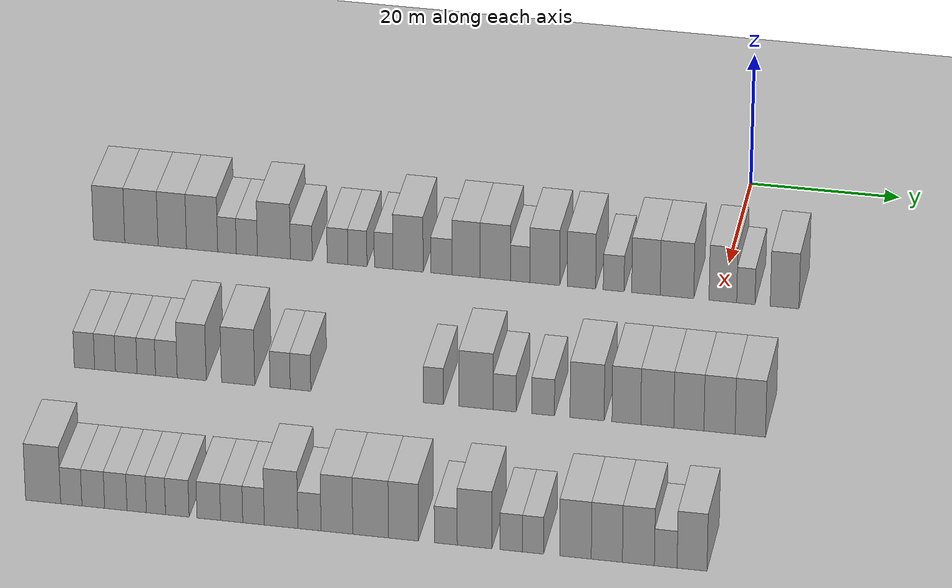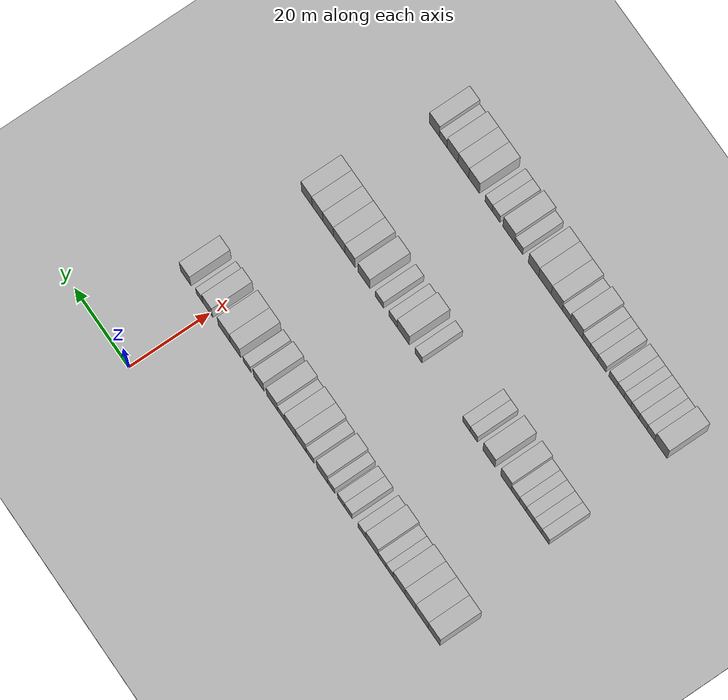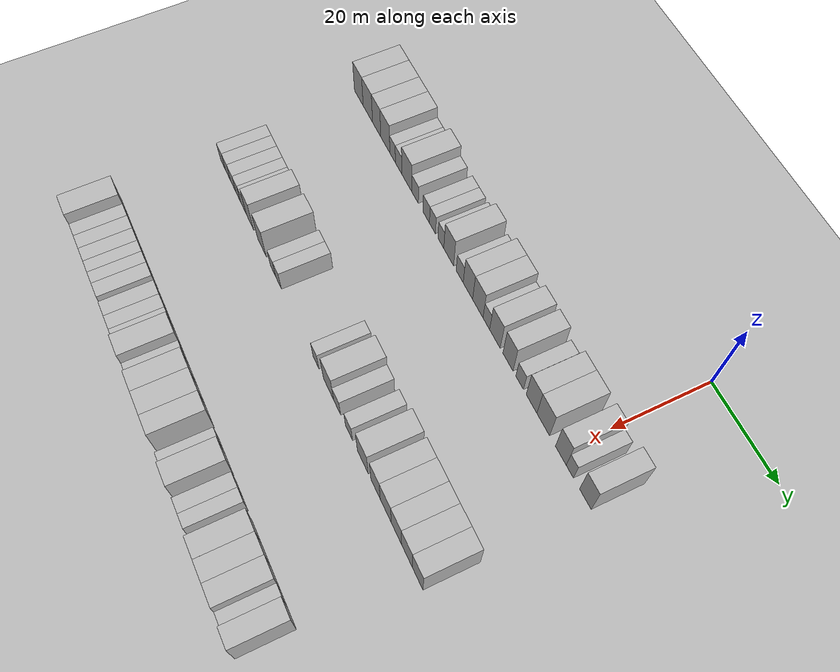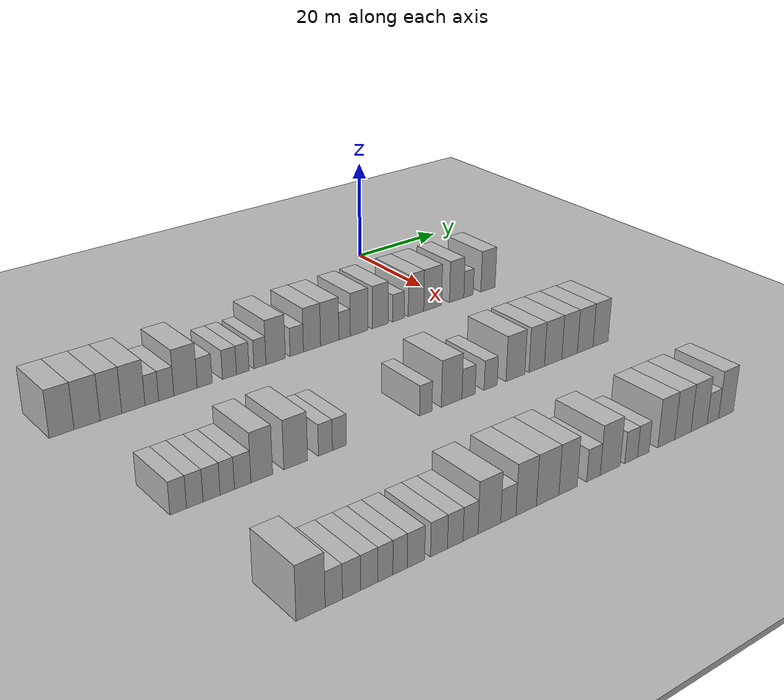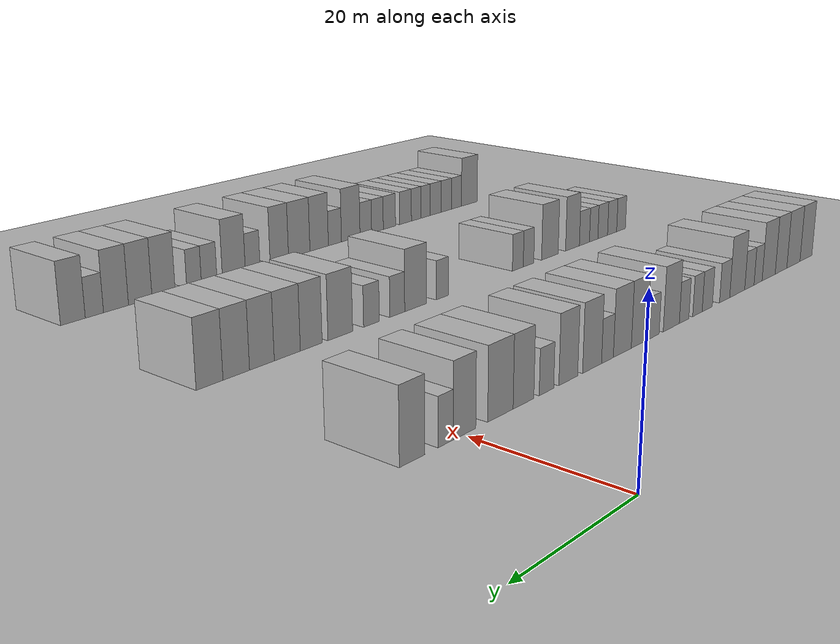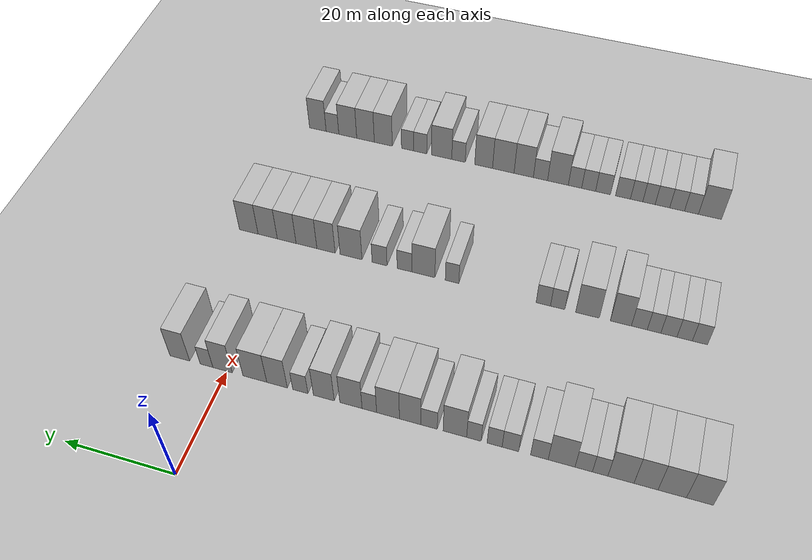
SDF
<sdf version="1.6">
 <world name="default">
  <include><name>ground_plane_1</name><uri>model://HANNAS_ground_plane</uri></include>
  <include>
   <name>ground_plane_2</name>
   <uri>model://HANNAS_ground_plane</uri>
   <pose>100 0 0  0 0 0</pose>
  </include>
  <model name="building_53">
   <static>1</static>
   <pose>25.0000 -81.2557 0 0.000000 0.000000 0.000000</pose>
   <link name="link">
    <pose>0 0 4.50 0 0 0</pose>
    <collision name="collision"><geometry><box><size>10.0000 4.2227 9.0000</size></box></geometry></collision>
    <visual name="visual">
     <cast_shadows>0</cast_shadows>
     <geometry><box><size>10.0000 4.2227 9.0000</size></box></geometry>
     <material>
      <script>
       <uri>model://HANNAS_wall/materials/scripts</uri>
       <uri>model://HANNAS_wall/materials/textures</uri>
       <name>vrc/HANNAS_wall</name>
      </script>
     </material>
    </visual>
   </link>
  </model>
  <model name="building_54">
   <static>1</static>
   <pose>25.0000 -76.8960 0 0.000000 0.000000 0.000000</pose>
   <link name="link">
    <pose>0 0 4.50 0 0 0</pose>
    <collision name="collision"><geometry><box><size>10.0000 4.4967 9.0000</size></box></geometry></collision>
    <visual name="visual">
     <cast_shadows>0</cast_shadows>
     <geometry><box><size>10.0000 4.4967 9.0000</size></box></geometry>
     <material>
      <script>
       <uri>model://HANNAS_wall/materials/scripts</uri>
       <uri>model://HANNAS_wall/materials/textures</uri>
       <name>vrc/HANNAS_wall</name>
      </script>
     </material>
    </visual>
   </link>
  </model>
  <model name="building_55">
   <static>1</static>
   <pose>25.0000 -72.7259 0 0.000000 0.000000 0.000000</pose>
   <link name="link">
    <pose>0 0 4.50 0 0 0</pose>
    <collision name="collision"><geometry><box><size>10.0000 3.8436 9.0000</size></box></geometry></collision>
    <visual name="visual">
     <cast_shadows>0</cast_shadows>
     <geometry><box><size>10.0000 3.8436 9.0000</size></box></geometry>
     <material>
      <script>
       <uri>model://HANNAS_wall/materials/scripts</uri>
       <uri>model://HANNAS_wall/materials/textures</uri>
       <name>vrc/HANNAS_wall</name>
      </script>
     </material>
    </visual>
   </link>
  </model>
  <model name="building_56">
   <static>1</static>
   <pose>25.0000 -68.7014 0 0.000000 0.000000 0.000000</pose>
   <link name="link">
    <pose>0 0 4.50 0 0 0</pose>
    <collision name="collision"><geometry><box><size>10.0000 4.2053 9.0000</size></box></geometry></collision>
    <visual name="visual">
     <cast_shadows>0</cast_shadows>
     <geometry><box><size>10.0000 4.2053 9.0000</size></box></geometry>
     <material>
      <script>
       <uri>model://HANNAS_wall/materials/scripts</uri>
       <uri>model://HANNAS_wall/materials/textures</uri>
       <name>vrc/HANNAS_wall</name>
      </script>
     </material>
    </visual>
   </link>
  </model>
  <model name="building_57">
   <static>1</static>
   <pose>25.0000 -65.3445 0 0.000000 0.000000 0.000000</pose>
   <link name="link">
    <pose>0 0 3.00 0 0 0</pose>
    <collision name="collision"><geometry><box><size>10.0000 2.5086 6.0000</size></box></geometry></collision>
    <visual name="visual">
     <cast_shadows>0</cast_shadows>
     <geometry><box><size>10.0000 2.5086 6.0000</size></box></geometry>
     <material>
      <script>
       <uri>model://HANNAS_wall/materials/scripts</uri>
       <uri>model://HANNAS_wall/materials/textures</uri>
       <name>vrc/HANNAS_wall</name>
      </script>
     </material>
    </visual>
   </link>
  </model>
  <model name="building_58">
   <static>1</static>
   <pose>25.0000 -62.6723 0 0.000000 0.000000 0.000000</pose>
   <link name="link">
    <pose>0 0 3.00 0 0 0</pose>
    <collision name="collision"><geometry><box><size>10.0000 2.8359 6.0000</size></box></geometry></collision>
    <visual name="visual">
     <cast_shadows>0</cast_shadows>
     <geometry><box><size>10.0000 2.8359 6.0000</size></box></geometry>
     <material>
      <script>
       <uri>model://HANNAS_wall/materials/scripts</uri>
       <uri>model://HANNAS_wall/materials/textures</uri>
       <name>vrc/HANNAS_wall</name>
      </script>
     </material>
    </visual>
   </link>
  </model>
  <model name="building_59">
   <static>1</static>
   <pose>25.0000 -59.0384 0 0.000000 0.000000 0.000000</pose>
   <link name="link">
    <pose>0 0 4.50 0 0 0</pose>
    <collision name="collision"><geometry><box><size>10.0000 4.4319 9.0000</size></box></geometry></collision>
    <visual name="visual">
     <cast_shadows>0</cast_shadows>
     <geometry><box><size>10.0000 4.4319 9.0000</size></box></geometry>
     <material>
      <script>
       <uri>model://HANNAS_wall/materials/scripts</uri>
       <uri>model://HANNAS_wall/materials/textures</uri>
       <name>vrc/HANNAS_wall</name>
      </script>
     </material>
    </visual>
   </link>
  </model>
  <model name="building_60">
   <static>1</static>
   <pose>25.0000 -55.3625 0 0.000000 0.000000 0.000000</pose>
   <link name="link">
    <pose>0 0 3.00 0 0 0</pose>
    <collision name="collision"><geometry><box><size>10.0000 2.9199 6.0000</size></box></geometry></collision>
    <visual name="visual">
     <cast_shadows>0</cast_shadows>
     <geometry><box><size>10.0000 2.9199 6.0000</size></box></geometry>
     <material>
      <script>
       <uri>model://HANNAS_wall/materials/scripts</uri>
       <uri>model://HANNAS_wall/materials/textures</uri>
       <name>vrc/HANNAS_wall</name>
      </script>
     </material>
    </visual>
   </link>
  </model>
  <model name="building_61">
   <static>1</static>
   <pose>25.0000 -50.5117 0 0.000000 0.000000 0.000000</pose>
   <link name="link">
    <pose>0 0 3.00 0 0 0</pose>
    <collision name="collision"><geometry><box><size>10.0000 2.7817 6.0000</size></box></geometry></collision>
    <visual name="visual">
     <cast_shadows>0</cast_shadows>
     <geometry><box><size>10.0000 2.7817 6.0000</size></box></geometry>
     <material>
      <script>
       <uri>model://HANNAS_wall/materials/scripts</uri>
       <uri>model://HANNAS_wall/materials/textures</uri>
       <name>vrc/HANNAS_wall</name>
      </script>
     </material>
    </visual>
   </link>
  </model>
  <model name="building_62">
   <static>1</static>
   <pose>25.0000 -47.8500 0 0.000000 0.000000 0.000000</pose>
   <link name="link">
    <pose>0 0 3.00 0 0 0</pose>
    <collision name="collision"><geometry><box><size>10.0000 2.5417 6.0000</size></box></geometry></collision>
    <visual name="visual">
     <cast_shadows>0</cast_shadows>
     <geometry><box><size>10.0000 2.5417 6.0000</size></box></geometry>
     <material>
      <script>
       <uri>model://HANNAS_wall/materials/scripts</uri>
       <uri>model://HANNAS_wall/materials/textures</uri>
       <name>vrc/HANNAS_wall</name>
      </script>
     </material>
    </visual>
   </link>
  </model>
  <model name="building_63">
   <static>1</static>
   <pose>25.0000 -44.3425 0 0.000000 0.000000 0.000000</pose>
   <link name="link">
    <pose>0 0 3.00 0 0 0</pose>
    <collision name="collision"><geometry><box><size>10.0000 2.4733 6.0000</size></box></geometry></collision>
    <visual name="visual">
     <cast_shadows>0</cast_shadows>
     <geometry><box><size>10.0000 2.4733 6.0000</size></box></geometry>
     <material>
      <script>
       <uri>model://HANNAS_wall/materials/scripts</uri>
       <uri>model://HANNAS_wall/materials/textures</uri>
       <name>vrc/HANNAS_wall</name>
      </script>
     </material>
    </visual>
   </link>
  </model>
  <model name="building_64">
   <static>1</static>
   <pose>25.0000 -41.0864 0 0.000000 0.000000 0.000000</pose>
   <link name="link">
    <pose>0 0 4.50 0 0 0</pose>
    <collision name="collision"><geometry><box><size>10.0000 4.0390 9.0000</size></box></geometry></collision>
    <visual name="visual">
     <cast_shadows>0</cast_shadows>
     <geometry><box><size>10.0000 4.0390 9.0000</size></box></geometry>
     <material>
      <script>
       <uri>model://HANNAS_wall/materials/scripts</uri>
       <uri>model://HANNAS_wall/materials/textures</uri>
       <name>vrc/HANNAS_wall</name>
      </script>
     </material>
    </visual>
   </link>
  </model>
  <model name="building_65">
   <static>1</static>
   <pose>25.0000 -36.6369 0 0.000000 0.000000 0.000000</pose>
   <link name="link">
    <pose>0 0 3.00 0 0 0</pose>
    <collision name="collision"><geometry><box><size>10.0000 2.8600 6.0000</size></box></geometry></collision>
    <visual name="visual">
     <cast_shadows>0</cast_shadows>
     <geometry><box><size>10.0000 2.8600 6.0000</size></box></geometry>
     <material>
      <script>
       <uri>model://HANNAS_wall/materials/scripts</uri>
       <uri>model://HANNAS_wall/materials/textures</uri>
       <name>vrc/HANNAS_wall</name>
      </script>
     </material>
    </visual>
   </link>
  </model>
  <model name="building_66">
   <static>1</static>
   <pose>25.0000 -33.3483 0 0.000000 0.000000 0.000000</pose>
   <link name="link">
    <pose>0 0 4.50 0 0 0</pose>
    <collision name="collision"><geometry><box><size>10.0000 3.7173 9.0000</size></box></geometry></collision>
    <visual name="visual">
     <cast_shadows>0</cast_shadows>
     <geometry><box><size>10.0000 3.7173 9.0000</size></box></geometry>
     <material>
      <script>
       <uri>model://HANNAS_wall/materials/scripts</uri>
       <uri>model://HANNAS_wall/materials/textures</uri>
       <name>vrc/HANNAS_wall</name>
      </script>
     </material>
    </visual>
   </link>
  </model>
  <model name="building_67">
   <static>1</static>
   <pose>25.0000 -29.4785 0 0.000000 0.000000 0.000000</pose>
   <link name="link">
    <pose>0 0 4.50 0 0 0</pose>
    <collision name="collision"><geometry><box><size>10.0000 4.0222 9.0000</size></box></geometry></collision>
    <visual name="visual">
     <cast_shadows>0</cast_shadows>
     <geometry><box><size>10.0000 4.0222 9.0000</size></box></geometry>
     <material>
      <script>
       <uri>model://HANNAS_wall/materials/scripts</uri>
       <uri>model://HANNAS_wall/materials/textures</uri>
       <name>vrc/HANNAS_wall</name>
      </script>
     </material>
    </visual>
   </link>
  </model>
  <model name="building_68">
   <static>1</static>
   <pose>25.0000 -26.1829 0 0.000000 0.000000 0.000000</pose>
   <link name="link">
    <pose>0 0 3.00 0 0 0</pose>
    <collision name="collision"><geometry><box><size>10.0000 2.5690 6.0000</size></box></geometry></collision>
    <visual name="visual">
     <cast_shadows>0</cast_shadows>
     <geometry><box><size>10.0000 2.5690 6.0000</size></box></geometry>
     <material>
      <script>
       <uri>model://HANNAS_wall/materials/scripts</uri>
       <uri>model://HANNAS_wall/materials/textures</uri>
       <name>vrc/HANNAS_wall</name>
      </script>
     </material>
    </visual>
   </link>
  </model>
  <model name="building_69">
   <static>1</static>
   <pose>25.0000 -22.9085 0 0.000000 0.000000 0.000000</pose>
   <link name="link">
    <pose>0 0 4.50 0 0 0</pose>
    <collision name="collision"><geometry><box><size>10.0000 3.9799 9.0000</size></box></geometry></collision>
    <visual name="visual">
     <cast_shadows>0</cast_shadows>
     <geometry><box><size>10.0000 3.9799 9.0000</size></box></geometry>
     <material>
      <script>
       <uri>model://HANNAS_wall/materials/scripts</uri>
       <uri>model://HANNAS_wall/materials/textures</uri>
       <name>vrc/HANNAS_wall</name>
      </script>
     </material>
    </visual>
   </link>
  </model>
  <model name="building_70">
   <static>1</static>
   <pose>25.0000 -18.0386 0 0.000000 0.000000 0.000000</pose>
   <link name="link">
    <pose>0 0 4.50 0 0 0</pose>
    <collision name="collision"><geometry><box><size>10.0000 3.7599 9.0000</size></box></geometry></collision>
    <visual name="visual">
     <cast_shadows>0</cast_shadows>
     <geometry><box><size>10.0000 3.7599 9.0000</size></box></geometry>
     <material>
      <script>
       <uri>model://HANNAS_wall/materials/scripts</uri>
       <uri>model://HANNAS_wall/materials/textures</uri>
       <name>vrc/HANNAS_wall</name>
      </script>
     </material>
    </visual>
   </link>
  </model>
  <model name="building_71">
   <static>1</static>
   <pose>25.0000 -13.7757 0 0.000000 0.000000 0.000000</pose>
   <link name="link">
    <pose>0 0 3.00 0 0 0</pose>
    <collision name="collision"><geometry><box><size>10.0000 2.7660 6.0000</size></box></geometry></collision>
    <visual name="visual">
     <cast_shadows>0</cast_shadows>
     <geometry><box><size>10.0000 2.7660 6.0000</size></box></geometry>
     <material>
      <script>
       <uri>model://HANNAS_wall/materials/scripts</uri>
       <uri>model://HANNAS_wall/materials/textures</uri>
       <name>vrc/HANNAS_wall</name>
      </script>
     </material>
    </visual>
   </link>
  </model>
  <model name="building_72">
   <static>1</static>
   <pose>25.0000 -9.5074 0 0.000000 0.000000 0.000000</pose>
   <link name="link">
    <pose>0 0 4.50 0 0 0</pose>
    <collision name="collision"><geometry><box><size>10.0000 3.7707 9.0000</size></box></geometry></collision>
    <visual name="visual">
     <cast_shadows>0</cast_shadows>
     <geometry><box><size>10.0000 3.7707 9.0000</size></box></geometry>
     <material>
      <script>
       <uri>model://HANNAS_wall/materials/scripts</uri>
       <uri>model://HANNAS_wall/materials/textures</uri>
       <name>vrc/HANNAS_wall</name>
      </script>
     </material>
    </visual>
   </link>
  </model>
  <model name="building_73">
   <static>1</static>
   <pose>25.0000 -5.4106 0 0.000000 0.000000 0.000000</pose>
   <link name="link">
    <pose>0 0 4.50 0 0 0</pose>
    <collision name="collision"><geometry><box><size>10.0000 4.4227 9.0000</size></box></geometry></collision>
    <visual name="visual">
     <cast_shadows>0</cast_shadows>
     <geometry><box><size>10.0000 4.4227 9.0000</size></box></geometry>
     <material>
      <script>
       <uri>model://HANNAS_wall/materials/scripts</uri>
       <uri>model://HANNAS_wall/materials/textures</uri>
       <name>vrc/HANNAS_wall</name>
      </script>
     </material>
    </visual>
   </link>
  </model>
  <model name="building_74">
   <static>1</static>
   <pose>25.0000 0.6202 0 0.000000 0.000000 0.000000</pose>
   <link name="link">
    <pose>0 0 4.50 0 0 0</pose>
    <collision name="collision"><geometry><box><size>10.0000 3.6390 9.0000</size></box></geometry></collision>
    <visual name="visual">
     <cast_shadows>0</cast_shadows>
     <geometry><box><size>10.0000 3.6390 9.0000</size></box></geometry>
     <material>
      <script>
       <uri>model://HANNAS_wall/materials/scripts</uri>
       <uri>model://HANNAS_wall/materials/textures</uri>
       <name>vrc/HANNAS_wall</name>
      </script>
     </material>
    </visual>
   </link>
  </model>
  <model name="building_75">
   <static>1</static>
   <pose>25.0000 3.6408 0 0.000000 0.000000 0.000000</pose>
   <link name="link">
    <pose>0 0 3.00 0 0 0</pose>
    <collision name="collision"><geometry><box><size>10.0000 2.4022 6.0000</size></box></geometry></collision>
    <visual name="visual">
     <cast_shadows>0</cast_shadows>
     <geometry><box><size>10.0000 2.4022 6.0000</size></box></geometry>
     <material>
      <script>
       <uri>model://HANNAS_wall/materials/scripts</uri>
       <uri>model://HANNAS_wall/materials/textures</uri>
       <name>vrc/HANNAS_wall</name>
      </script>
     </material>
    </visual>
   </link>
  </model>
  <model name="building_76">
   <static>1</static>
   <pose>25.0000 8.7275 0 0.000000 0.000000 0.000000</pose>
   <link name="link">
    <pose>0 0 4.50 0 0 0</pose>
    <collision name="collision"><geometry><box><size>10.0000 3.7712 9.0000</size></box></geometry></collision>
    <visual name="visual">
     <cast_shadows>0</cast_shadows>
     <geometry><box><size>10.0000 3.7712 9.0000</size></box></geometry>
     <material>
      <script>
       <uri>model://HANNAS_wall/materials/scripts</uri>
       <uri>model://HANNAS_wall/materials/textures</uri>
       <name>vrc/HANNAS_wall</name>
      </script>
     </material>
    </visual>
   </link>
  </model>
  <model name="building_181">
   <static>1</static>
   <pose>55.0000 -77.5222 0 0.000000 0.000000 0.000000</pose>
   <link name="link">
    <pose>0 0 3.00 0 0 0</pose>
    <collision name="collision"><geometry><box><size>10.0000 2.6740 6.0000</size></box></geometry></collision>
    <visual name="visual">
     <cast_shadows>0</cast_shadows>
     <geometry><box><size>10.0000 2.6740 6.0000</size></box></geometry>
     <material>
      <script>
       <uri>model://HANNAS_wall/materials/scripts</uri>
       <uri>model://HANNAS_wall/materials/textures</uri>
       <name>vrc/HANNAS_wall</name>
      </script>
     </material>
    </visual>
   </link>
  </model>
  <model name="building_182">
   <static>1</static>
   <pose>55.0000 -74.8243 0 0.000000 0.000000 0.000000</pose>
   <link name="link">
    <pose>0 0 3.00 0 0 0</pose>
    <collision name="collision"><geometry><box><size>10.0000 2.7218 6.0000</size></box></geometry></collision>
    <visual name="visual">
     <cast_shadows>0</cast_shadows>
     <geometry><box><size>10.0000 2.7218 6.0000</size></box></geometry>
     <material>
      <script>
       <uri>model://HANNAS_wall/materials/scripts</uri>
       <uri>model://HANNAS_wall/materials/textures</uri>
       <name>vrc/HANNAS_wall</name>
      </script>
     </material>
    </visual>
   </link>
  </model>
  <model name="building_183">
   <static>1</static>
   <pose>55.0000 -72.0432 0 0.000000 0.000000 0.000000</pose>
   <link name="link">
    <pose>0 0 3.00 0 0 0</pose>
    <collision name="collision"><geometry><box><size>10.0000 2.8404 6.0000</size></box></geometry></collision>
    <visual name="visual">
     <cast_shadows>0</cast_shadows>
     <geometry><box><size>10.0000 2.8404 6.0000</size></box></geometry>
     <material>
      <script>
       <uri>model://HANNAS_wall/materials/scripts</uri>
       <uri>model://HANNAS_wall/materials/textures</uri>
       <name>vrc/HANNAS_wall</name>
      </script>
     </material>
    </visual>
   </link>
  </model>
  <model name="building_184">
   <static>1</static>
   <pose>55.0000 -69.4146 0 0.000000 0.000000 0.000000</pose>
   <link name="link">
    <pose>0 0 3.00 0 0 0</pose>
    <collision name="collision"><geometry><box><size>10.0000 2.4168 6.0000</size></box></geometry></collision>
    <visual name="visual">
     <cast_shadows>0</cast_shadows>
     <geometry><box><size>10.0000 2.4168 6.0000</size></box></geometry>
     <material>
      <script>
       <uri>model://HANNAS_wall/materials/scripts</uri>
       <uri>model://HANNAS_wall/materials/textures</uri>
       <name>vrc/HANNAS_wall</name>
      </script>
     </material>
    </visual>
   </link>
  </model>
  <model name="building_185">
   <static>1</static>
   <pose>55.0000 -66.7874 0 0.000000 0.000000 0.000000</pose>
   <link name="link">
    <pose>0 0 3.00 0 0 0</pose>
    <collision name="collision"><geometry><box><size>10.0000 2.8376 6.0000</size></box></geometry></collision>
    <visual name="visual">
     <cast_shadows>0</cast_shadows>
     <geometry><box><size>10.0000 2.8376 6.0000</size></box></geometry>
     <material>
      <script>
       <uri>model://HANNAS_wall/materials/scripts</uri>
       <uri>model://HANNAS_wall/materials/textures</uri>
       <name>vrc/HANNAS_wall</name>
      </script>
     </material>
    </visual>
   </link>
  </model>
  <model name="building_186">
   <static>1</static>
   <pose>55.0000 -63.4715 0 0.000000 0.000000 0.000000</pose>
   <link name="link">
    <pose>0 0 4.50 0 0 0</pose>
    <collision name="collision"><geometry><box><size>10.0000 3.7941 9.0000</size></box></geometry></collision>
    <visual name="visual">
     <cast_shadows>0</cast_shadows>
     <geometry><box><size>10.0000 3.7941 9.0000</size></box></geometry>
     <material>
      <script>
       <uri>model://HANNAS_wall/materials/scripts</uri>
       <uri>model://HANNAS_wall/materials/textures</uri>
       <name>vrc/HANNAS_wall</name>
      </script>
     </material>
    </visual>
   </link>
  </model>
  <model name="building_187">
   <static>1</static>
   <pose>55.0000 -57.4114 0 0.000000 0.000000 0.000000</pose>
   <link name="link">
    <pose>0 0 4.50 0 0 0</pose>
    <collision name="collision"><geometry><box><size>10.0000 4.3260 9.0000</size></box></geometry></collision>
    <visual name="visual">
     <cast_shadows>0</cast_shadows>
     <geometry><box><size>10.0000 4.3260 9.0000</size></box></geometry>
     <material>
      <script>
       <uri>model://HANNAS_wall/materials/scripts</uri>
       <uri>model://HANNAS_wall/materials/textures</uri>
       <name>vrc/HANNAS_wall</name>
      </script>
     </material>
    </visual>
   </link>
  </model>
  <model name="building_188">
   <static>1</static>
   <pose>55.0000 -51.9326 0 0.000000 0.000000 0.000000</pose>
   <link name="link">
    <pose>0 0 3.00 0 0 0</pose>
    <collision name="collision"><geometry><box><size>10.0000 2.6316 6.0000</size></box></geometry></collision>
    <visual name="visual">
     <cast_shadows>0</cast_shadows>
     <geometry><box><size>10.0000 2.6316 6.0000</size></box></geometry>
     <material>
      <script>
       <uri>model://HANNAS_wall/materials/scripts</uri>
       <uri>model://HANNAS_wall/materials/textures</uri>
       <name>vrc/HANNAS_wall</name>
      </script>
     </material>
    </visual>
   </link>
  </model>
  <model name="building_189">
   <static>1</static>
   <pose>55.0000 -49.2821 0 0.000000 0.000000 0.000000</pose>
   <link name="link">
    <pose>0 0 3.00 0 0 0</pose>
    <collision name="collision"><geometry><box><size>10.0000 2.6694 6.0000</size></box></geometry></collision>
    <visual name="visual">
     <cast_shadows>0</cast_shadows>
     <geometry><box><size>10.0000 2.6694 6.0000</size></box></geometry>
     <material>
      <script>
       <uri>model://HANNAS_wall/materials/scripts</uri>
       <uri>model://HANNAS_wall/materials/textures</uri>
       <name>vrc/HANNAS_wall</name>
      </script>
     </material>
    </visual>
   </link>
  </model>
  <model name="building_190">
   <static>1</static>
   <pose>55.0000 -32.0474 0 0.000000 0.000000 0.000000</pose>
   <link name="link">
    <pose>0 0 3.00 0 0 0</pose>
    <collision name="collision"><geometry><box><size>10.0000 2.6000 6.0000</size></box></geometry></collision>
    <visual name="visual">
     <cast_shadows>0</cast_shadows>
     <geometry><box><size>10.0000 2.6000 6.0000</size></box></geometry>
     <material>
      <script>
       <uri>model://HANNAS_wall/materials/scripts</uri>
       <uri>model://HANNAS_wall/materials/textures</uri>
       <name>vrc/HANNAS_wall</name>
      </script>
     </material>
    </visual>
   </link>
  </model>
  <model name="building_191">
   <static>1</static>
   <pose>55.0000 -26.5317 0 0.000000 0.000000 0.000000</pose>
   <link name="link">
    <pose>0 0 4.50 0 0 0</pose>
    <collision name="collision"><geometry><box><size>10.0000 4.4314 9.0000</size></box></geometry></collision>
    <visual name="visual">
     <cast_shadows>0</cast_shadows>
     <geometry><box><size>10.0000 4.4314 9.0000</size></box></geometry>
     <material>
      <script>
       <uri>model://HANNAS_wall/materials/scripts</uri>
       <uri>model://HANNAS_wall/materials/textures</uri>
       <name>vrc/HANNAS_wall</name>
      </script>
     </material>
    </visual>
   </link>
  </model>
  <model name="building_192">
   <static>1</static>
   <pose>55.0000 -22.8571 0 0.000000 0.000000 0.000000</pose>
   <link name="link">
    <pose>0 0 3.00 0 0 0</pose>
    <collision name="collision"><geometry><box><size>10.0000 2.9178 6.0000</size></box></geometry></collision>
    <visual name="visual">
     <cast_shadows>0</cast_shadows>
     <geometry><box><size>10.0000 2.9178 6.0000</size></box></geometry>
     <material>
      <script>
       <uri>model://HANNAS_wall/materials/scripts</uri>
       <uri>model://HANNAS_wall/materials/textures</uri>
       <name>vrc/HANNAS_wall</name>
      </script>
     </material>
    </visual>
   </link>
  </model>
  <model name="building_193">
   <static>1</static>
   <pose>55.0000 -17.9248 0 0.000000 0.000000 0.000000</pose>
   <link name="link">
    <pose>0 0 3.00 0 0 0</pose>
    <collision name="collision"><geometry><box><size>10.0000 2.9469 6.0000</size></box></geometry></collision>
    <visual name="visual">
     <cast_shadows>0</cast_shadows>
     <geometry><box><size>10.0000 2.9469 6.0000</size></box></geometry>
     <material>
      <script>
       <uri>model://HANNAS_wall/materials/scripts</uri>
       <uri>model://HANNAS_wall/materials/textures</uri>
       <name>vrc/HANNAS_wall</name>
      </script>
     </material>
    </visual>
   </link>
  </model>
  <model name="building_194">
   <static>1</static>
   <pose>55.0000 -12.2633 0 0.000000 0.000000 0.000000</pose>
   <link name="link">
    <pose>0 0 4.50 0 0 0</pose>
    <collision name="collision"><geometry><box><size>10.0000 4.3760 9.0000</size></box></geometry></collision>
    <visual name="visual">
     <cast_shadows>0</cast_shadows>
     <geometry><box><size>10.0000 4.3760 9.0000</size></box></geometry>
     <material>
      <script>
       <uri>model://HANNAS_wall/materials/scripts</uri>
       <uri>model://HANNAS_wall/materials/textures</uri>
       <name>vrc/HANNAS_wall</name>
      </script>
     </material>
    </visual>
   </link>
  </model>
  <model name="building_195">
   <static>1</static>
   <pose>55.0000 -7.2340 0 0.000000 0.000000 0.000000</pose>
   <link name="link">
    <pose>0 0 4.50 0 0 0</pose>
    <collision name="collision"><geometry><box><size>10.0000 3.6827 9.0000</size></box></geometry></collision>
    <visual name="visual">
     <cast_shadows>0</cast_shadows>
     <geometry><box><size>10.0000 3.6827 9.0000</size></box></geometry>
     <material>
      <script>
       <uri>model://HANNAS_wall/materials/scripts</uri>
       <uri>model://HANNAS_wall/materials/textures</uri>
       <name>vrc/HANNAS_wall</name>
      </script>
     </material>
    </visual>
   </link>
  </model>
  <model name="building_196">
   <static>1</static>
   <pose>55.0000 -3.2785 0 0.000000 0.000000 0.000000</pose>
   <link name="link">
    <pose>0 0 4.50 0 0 0</pose>
    <collision name="collision"><geometry><box><size>10.0000 4.2282 9.0000</size></box></geometry></collision>
    <visual name="visual">
     <cast_shadows>0</cast_shadows>
     <geometry><box><size>10.0000 4.2282 9.0000</size></box></geometry>
     <material>
      <script>
       <uri>model://HANNAS_wall/materials/scripts</uri>
       <uri>model://HANNAS_wall/materials/textures</uri>
       <name>vrc/HANNAS_wall</name>
      </script>
     </material>
    </visual>
   </link>
  </model>
  <model name="building_197">
   <static>1</static>
   <pose>55.0000 0.7634 0 0.000000 0.000000 0.000000</pose>
   <link name="link">
    <pose>0 0 4.50 0 0 0</pose>
    <collision name="collision"><geometry><box><size>10.0000 3.8557 9.0000</size></box></geometry></collision>
    <visual name="visual">
     <cast_shadows>0</cast_shadows>
     <geometry><box><size>10.0000 3.8557 9.0000</size></box></geometry>
     <material>
      <script>
       <uri>model://HANNAS_wall/materials/scripts</uri>
       <uri>model://HANNAS_wall/materials/textures</uri>
       <name>vrc/HANNAS_wall</name>
      </script>
     </material>
    </visual>
   </link>
  </model>
  <model name="building_198">
   <static>1</static>
   <pose>55.0000 4.6766 0 0.000000 0.000000 0.000000</pose>
   <link name="link">
    <pose>0 0 4.50 0 0 0</pose>
    <collision name="collision"><geometry><box><size>10.0000 3.9706 9.0000</size></box></geometry></collision>
    <visual name="visual">
     <cast_shadows>0</cast_shadows>
     <geometry><box><size>10.0000 3.9706 9.0000</size></box></geometry>
     <material>
      <script>
       <uri>model://HANNAS_wall/materials/scripts</uri>
       <uri>model://HANNAS_wall/materials/textures</uri>
       <name>vrc/HANNAS_wall</name>
      </script>
     </material>
    </visual>
   </link>
  </model>
  <model name="building_199">
   <static>1</static>
   <pose>55.0000 8.5972 0 0.000000 0.000000 0.000000</pose>
   <link name="link">
    <pose>0 0 4.50 0 0 0</pose>
    <collision name="collision"><geometry><box><size>10.0000 3.8707 9.0000</size></box></geometry></collision>
    <visual name="visual">
     <cast_shadows>0</cast_shadows>
     <geometry><box><size>10.0000 3.8707 9.0000</size></box></geometry>
     <material>
      <script>
       <uri>model://HANNAS_wall/materials/scripts</uri>
       <uri>model://HANNAS_wall/materials/textures</uri>
       <name>vrc/HANNAS_wall</name>
      </script>
     </material>
    </visual>
   </link>
  </model>
  <model name="building_312">
   <static>1</static>
   <pose>85.0000 -75.7118 0 0.000000 0.000000 0.000000</pose>
   <link name="link">
    <pose>0 0 4.50 0 0 0</pose>
    <collision name="collision"><geometry><box><size>10.0000 4.4573 9.0000</size></box></geometry></collision>
    <visual name="visual">
     <cast_shadows>0</cast_shadows>
     <geometry><box><size>10.0000 4.4573 9.0000</size></box></geometry>
     <material>
      <script>
       <uri>model://HANNAS_wall/materials/scripts</uri>
       <uri>model://HANNAS_wall/materials/textures</uri>
       <name>vrc/HANNAS_wall</name>
      </script>
     </material>
    </visual>
   </link>
  </model>
  <model name="building_313">
   <static>1</static>
   <pose>85.0000 -72.1300 0 0.000000 0.000000 0.000000</pose>
   <link name="link">
    <pose>0 0 3.00 0 0 0</pose>
    <collision name="collision"><geometry><box><size>10.0000 2.7062 6.0000</size></box></geometry></collision>
    <visual name="visual">
     <cast_shadows>0</cast_shadows>
     <geometry><box><size>10.0000 2.7062 6.0000</size></box></geometry>
     <material>
      <script>
       <uri>model://HANNAS_wall/materials/scripts</uri>
       <uri>model://HANNAS_wall/materials/textures</uri>
       <name>vrc/HANNAS_wall</name>
      </script>
     </material>
    </visual>
   </link>
  </model>
  <model name="building_314">
   <static>1</static>
   <pose>85.0000 -69.3335 0 0.000000 0.000000 0.000000</pose>
   <link name="link">
    <pose>0 0 3.00 0 0 0</pose>
    <collision name="collision"><geometry><box><size>10.0000 2.8870 6.0000</size></box></geometry></collision>
    <visual name="visual">
     <cast_shadows>0</cast_shadows>
     <geometry><box><size>10.0000 2.8870 6.0000</size></box></geometry>
     <material>
      <script>
       <uri>model://HANNAS_wall/materials/scripts</uri>
       <uri>model://HANNAS_wall/materials/textures</uri>
       <name>vrc/HANNAS_wall</name>
      </script>
     </material>
    </visual>
   </link>
  </model>
  <model name="building_315">
   <static>1</static>
   <pose>85.0000 -66.4652 0 0.000000 0.000000 0.000000</pose>
   <link name="link">
    <pose>0 0 3.00 0 0 0</pose>
    <collision name="collision"><geometry><box><size>10.0000 2.8495 6.0000</size></box></geometry></collision>
    <visual name="visual">
     <cast_shadows>0</cast_shadows>
     <geometry><box><size>10.0000 2.8495 6.0000</size></box></geometry>
     <material>
      <script>
       <uri>model://HANNAS_wall/materials/scripts</uri>
       <uri>model://HANNAS_wall/materials/textures</uri>
       <name>vrc/HANNAS_wall</name>
      </script>
     </material>
    </visual>
   </link>
  </model>
  <model name="building_316">
   <static>1</static>
   <pose>85.0000 -63.8143 0 0.000000 0.000000 0.000000</pose>
   <link name="link">
    <pose>0 0 3.00 0 0 0</pose>
    <collision name="collision"><geometry><box><size>10.0000 2.4523 6.0000</size></box></geometry></collision>
    <visual name="visual">
     <cast_shadows>0</cast_shadows>
     <geometry><box><size>10.0000 2.4523 6.0000</size></box></geometry>
     <material>
      <script>
       <uri>model://HANNAS_wall/materials/scripts</uri>
       <uri>model://HANNAS_wall/materials/textures</uri>
       <name>vrc/HANNAS_wall</name>
      </script>
     </material>
    </visual>
   </link>
  </model>
  <model name="building_317">
   <static>1</static>
   <pose>85.0000 -61.3687 0 0.000000 0.000000 0.000000</pose>
   <link name="link">
    <pose>0 0 3.00 0 0 0</pose>
    <collision name="collision"><geometry><box><size>10.0000 2.4389 6.0000</size></box></geometry></collision>
    <visual name="visual">
     <cast_shadows>0</cast_shadows>
     <geometry><box><size>10.0000 2.4389 6.0000</size></box></geometry>
     <material>
      <script>
       <uri>model://HANNAS_wall/materials/scripts</uri>
       <uri>model://HANNAS_wall/materials/textures</uri>
       <name>vrc/HANNAS_wall</name>
      </script>
     </material>
    </visual>
   </link>
  </model>
  <model name="building_318">
   <static>1</static>
   <pose>85.0000 -58.6580 0 0.000000 0.000000 0.000000</pose>
   <link name="link">
    <pose>0 0 3.00 0 0 0</pose>
    <collision name="collision"><geometry><box><size>10.0000 2.9824 6.0000</size></box></geometry></collision>
    <visual name="visual">
     <cast_shadows>0</cast_shadows>
     <geometry><box><size>10.0000 2.9824 6.0000</size></box></geometry>
     <material>
      <script>
       <uri>model://HANNAS_wall/materials/scripts</uri>
       <uri>model://HANNAS_wall/materials/textures</uri>
       <name>vrc/HANNAS_wall</name>
      </script>
     </material>
    </visual>
   </link>
  </model>
  <model name="building_319">
   <static>1</static>
   <pose>85.0000 -54.6703 0 0.000000 0.000000 0.000000</pose>
   <link name="link">
    <pose>0 0 3.00 0 0 0</pose>
    <collision name="collision"><geometry><box><size>10.0000 2.9929 6.0000</size></box></geometry></collision>
    <visual name="visual">
     <cast_shadows>0</cast_shadows>
     <geometry><box><size>10.0000 2.9929 6.0000</size></box></geometry>
     <material>
      <script>
       <uri>model://HANNAS_wall/materials/scripts</uri>
       <uri>model://HANNAS_wall/materials/textures</uri>
       <name>vrc/HANNAS_wall</name>
      </script>
     </material>
    </visual>
   </link>
  </model>
  <model name="building_320">
   <static>1</static>
   <pose>85.0000 -51.7747 0 0.000000 0.000000 0.000000</pose>
   <link name="link">
    <pose>0 0 3.00 0 0 0</pose>
    <collision name="collision"><geometry><box><size>10.0000 2.7983 6.0000</size></box></geometry></collision>
    <visual name="visual">
     <cast_shadows>0</cast_shadows>
     <geometry><box><size>10.0000 2.7983 6.0000</size></box></geometry>
     <material>
      <script>
       <uri>model://HANNAS_wall/materials/scripts</uri>
       <uri>model://HANNAS_wall/materials/textures</uri>
       <name>vrc/HANNAS_wall</name>
      </script>
     </material>
    </visual>
   </link>
  </model>
  <model name="building_321">
   <static>1</static>
   <pose>85.0000 -49.0185 0 0.000000 0.000000 0.000000</pose>
   <link name="link">
    <pose>0 0 3.00 0 0 0</pose>
    <collision name="collision"><geometry><box><size>10.0000 2.7142 6.0000</size></box></geometry></collision>
    <visual name="visual">
     <cast_shadows>0</cast_shadows>
     <geometry><box><size>10.0000 2.7142 6.0000</size></box></geometry>
     <material>
      <script>
       <uri>model://HANNAS_wall/materials/scripts</uri>
       <uri>model://HANNAS_wall/materials/textures</uri>
       <name>vrc/HANNAS_wall</name>
      </script>
     </material>
    </visual>
   </link>
  </model>
  <model name="building_322">
   <static>1</static>
   <pose>85.0000 -45.5417 0 0.000000 0.000000 0.000000</pose>
   <link name="link">
    <pose>0 0 4.50 0 0 0</pose>
    <collision name="collision"><geometry><box><size>10.0000 4.2392 9.0000</size></box></geometry></collision>
    <visual name="visual">
     <cast_shadows>0</cast_shadows>
     <geometry><box><size>10.0000 4.2392 9.0000</size></box></geometry>
     <material>
      <script>
       <uri>model://HANNAS_wall/materials/scripts</uri>
       <uri>model://HANNAS_wall/materials/textures</uri>
       <name>vrc/HANNAS_wall</name>
      </script>
     </material>
    </visual>
   </link>
  </model>
  <model name="building_323">
   <static>1</static>
   <pose>85.0000 -41.9638 0 0.000000 0.000000 0.000000</pose>
   <link name="link">
    <pose>0 0 3.00 0 0 0</pose>
    <collision name="collision"><geometry><box><size>10.0000 2.9165 6.0000</size></box></geometry></collision>
    <visual name="visual">
     <cast_shadows>0</cast_shadows>
     <geometry><box><size>10.0000 2.9165 6.0000</size></box></geometry>
     <material>
      <script>
       <uri>model://HANNAS_wall/materials/scripts</uri>
       <uri>model://HANNAS_wall/materials/textures</uri>
       <name>vrc/HANNAS_wall</name>
      </script>
     </material>
    </visual>
   </link>
  </model>
  <model name="building_324">
   <static>1</static>
   <pose>85.0000 -38.5089 0 0.000000 0.000000 0.000000</pose>
   <link name="link">
    <pose>0 0 4.50 0 0 0</pose>
    <collision name="collision"><geometry><box><size>10.0000 3.9933 9.0000</size></box></geometry></collision>
    <visual name="visual">
     <cast_shadows>0</cast_shadows>
     <geometry><box><size>10.0000 3.9933 9.0000</size></box></geometry>
     <material>
      <script>
       <uri>model://HANNAS_wall/materials/scripts</uri>
       <uri>model://HANNAS_wall/materials/textures</uri>
       <name>vrc/HANNAS_wall</name>
      </script>
     </material>
    </visual>
   </link>
  </model>
  <model name="building_325">
   <static>1</static>
   <pose>85.0000 -34.2677 0 0.000000 0.000000 0.000000</pose>
   <link name="link">
    <pose>0 0 4.50 0 0 0</pose>
    <collision name="collision"><geometry><box><size>10.0000 4.4893 9.0000</size></box></geometry></collision>
    <visual name="visual">
     <cast_shadows>0</cast_shadows>
     <geometry><box><size>10.0000 4.4893 9.0000</size></box></geometry>
     <material>
      <script>
       <uri>model://HANNAS_wall/materials/scripts</uri>
       <uri>model://HANNAS_wall/materials/textures</uri>
       <name>vrc/HANNAS_wall</name>
      </script>
     </material>
    </visual>
   </link>
  </model>
  <model name="building_326">
   <static>1</static>
   <pose>85.0000 -30.1525 0 0.000000 0.000000 0.000000</pose>
   <link name="link">
    <pose>0 0 4.50 0 0 0</pose>
    <collision name="collision"><geometry><box><size>10.0000 3.7409 9.0000</size></box></geometry></collision>
    <visual name="visual">
     <cast_shadows>0</cast_shadows>
     <geometry><box><size>10.0000 3.7409 9.0000</size></box></geometry>
     <material>
      <script>
       <uri>model://HANNAS_wall/materials/scripts</uri>
       <uri>model://HANNAS_wall/materials/textures</uri>
       <name>vrc/HANNAS_wall</name>
      </script>
     </material>
    </visual>
   </link>
  </model>
  <model name="building_327">
   <static>1</static>
   <pose>85.0000 -24.8500 0 0.000000 0.000000 0.000000</pose>
   <link name="link">
    <pose>0 0 3.00 0 0 0</pose>
    <collision name="collision"><geometry><box><size>10.0000 2.8641 6.0000</size></box></geometry></collision>
    <visual name="visual">
     <cast_shadows>0</cast_shadows>
     <geometry><box><size>10.0000 2.8641 6.0000</size></box></geometry>
     <material>
      <script>
       <uri>model://HANNAS_wall/materials/scripts</uri>
       <uri>model://HANNAS_wall/materials/textures</uri>
       <name>vrc/HANNAS_wall</name>
      </script>
     </material>
    </visual>
   </link>
  </model>
  <model name="building_328">
   <static>1</static>
   <pose>85.0000 -21.2518 0 0.000000 0.000000 0.000000</pose>
   <link name="link">
    <pose>0 0 4.50 0 0 0</pose>
    <collision name="collision"><geometry><box><size>10.0000 4.3324 9.0000</size></box></geometry></collision>
    <visual name="visual">
     <cast_shadows>0</cast_shadows>
     <geometry><box><size>10.0000 4.3324 9.0000</size></box></geometry>
     <material>
      <script>
       <uri>model://HANNAS_wall/materials/scripts</uri>
       <uri>model://HANNAS_wall/materials/textures</uri>
       <name>vrc/HANNAS_wall</name>
      </script>
     </material>
    </visual>
   </link>
  </model>
  <model name="building_329">
   <static>1</static>
   <pose>85.0000 -16.6756 0 0.000000 0.000000 0.000000</pose>
   <link name="link">
    <pose>0 0 3.00 0 0 0</pose>
    <collision name="collision"><geometry><box><size>10.0000 2.8200 6.0000</size></box></geometry></collision>
    <visual name="visual">
     <cast_shadows>0</cast_shadows>
     <geometry><box><size>10.0000 2.8200 6.0000</size></box></geometry>
     <material>
      <script>
       <uri>model://HANNAS_wall/materials/scripts</uri>
       <uri>model://HANNAS_wall/materials/textures</uri>
       <name>vrc/HANNAS_wall</name>
      </script>
     </material>
    </visual>
   </link>
  </model>
  <model name="building_330">
   <static>1</static>
   <pose>85.0000 -13.9567 0 0.000000 0.000000 0.000000</pose>
   <link name="link">
    <pose>0 0 3.00 0 0 0</pose>
    <collision name="collision"><geometry><box><size>10.0000 2.6178 6.0000</size></box></geometry></collision>
    <visual name="visual">
     <cast_shadows>0</cast_shadows>
     <geometry><box><size>10.0000 2.6178 6.0000</size></box></geometry>
     <material>
      <script>
       <uri>model://HANNAS_wall/materials/scripts</uri>
       <uri>model://HANNAS_wall/materials/textures</uri>
       <name>vrc/HANNAS_wall</name>
      </script>
     </material>
    </visual>
   </link>
  </model>
  <model name="building_331">
   <static>1</static>
   <pose>85.0000 -8.6797 0 0.000000 0.000000 0.000000</pose>
   <link name="link">
    <pose>0 0 4.50 0 0 0</pose>
    <collision name="collision"><geometry><box><size>10.0000 3.9362 9.0000</size></box></geometry></collision>
    <visual name="visual">
     <cast_shadows>0</cast_shadows>
     <geometry><box><size>10.0000 3.9362 9.0000</size></box></geometry>
     <material>
      <script>
       <uri>model://HANNAS_wall/materials/scripts</uri>
       <uri>model://HANNAS_wall/materials/textures</uri>
       <name>vrc/HANNAS_wall</name>
      </script>
     </material>
    </visual>
   </link>
  </model>
  <model name="building_332">
   <static>1</static>
   <pose>85.0000 -4.7787 0 0.000000 0.000000 0.000000</pose>
   <link name="link">
    <pose>0 0 4.50 0 0 0</pose>
    <collision name="collision"><geometry><box><size>10.0000 3.8657 9.0000</size></box></geometry></collision>
    <visual name="visual">
     <cast_shadows>0</cast_shadows>
     <geometry><box><size>10.0000 3.8657 9.0000</size></box></geometry>
     <material>
      <script>
       <uri>model://HANNAS_wall/materials/scripts</uri>
       <uri>model://HANNAS_wall/materials/textures</uri>
       <name>vrc/HANNAS_wall</name>
      </script>
     </material>
    </visual>
   </link>
  </model>
  <model name="building_333">
   <static>1</static>
   <pose>85.0000 -0.8658 0 0.000000 0.000000 0.000000</pose>
   <link name="link">
    <pose>0 0 4.50 0 0 0</pose>
    <collision name="collision"><geometry><box><size>10.0000 3.9602 9.0000</size></box></geometry></collision>
    <visual name="visual">
     <cast_shadows>0</cast_shadows>
     <geometry><box><size>10.0000 3.9602 9.0000</size></box></geometry>
     <material>
      <script>
       <uri>model://HANNAS_wall/materials/scripts</uri>
       <uri>model://HANNAS_wall/materials/textures</uri>
       <name>vrc/HANNAS_wall</name>
      </script>
     </material>
    </visual>
   </link>
  </model>
  <model name="building_334">
   <static>1</static>
   <pose>85.0000 2.5192 0 0.000000 0.000000 0.000000</pose>
   <link name="link">
    <pose>0 0 3.00 0 0 0</pose>
    <collision name="collision"><geometry><box><size>10.0000 2.8098 6.0000</size></box></geometry></collision>
    <visual name="visual">
     <cast_shadows>0</cast_shadows>
     <geometry><box><size>10.0000 2.8098 6.0000</size></box></geometry>
     <material>
      <script>
       <uri>model://HANNAS_wall/materials/scripts</uri>
       <uri>model://HANNAS_wall/materials/textures</uri>
       <name>vrc/HANNAS_wall</name>
      </script>
     </material>
    </visual>
   </link>
  </model>
  <model name="building_335">
   <static>1</static>
   <pose>85.0000 5.7778 0 0.000000 0.000000 0.000000</pose>
   <link name="link">
    <pose>0 0 4.50 0 0 0</pose>
    <collision name="collision"><geometry><box><size>10.0000 3.7073 9.0000</size></box></geometry></collision>
    <visual name="visual">
     <cast_shadows>0</cast_shadows>
     <geometry><box><size>10.0000 3.7073 9.0000</size></box></geometry>
     <material>
      <script>
       <uri>model://HANNAS_wall/materials/scripts</uri>
       <uri>model://HANNAS_wall/materials/textures</uri>
       <name>vrc/HANNAS_wall</name>
      </script>
     </material>
    </visual>
   </link>
  </model>
 </world>
</sdf>
